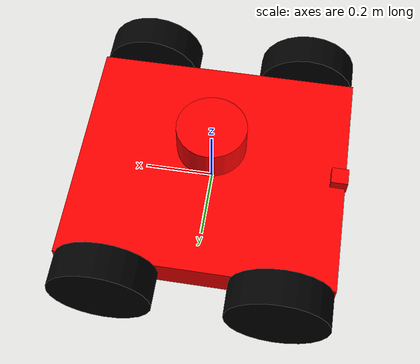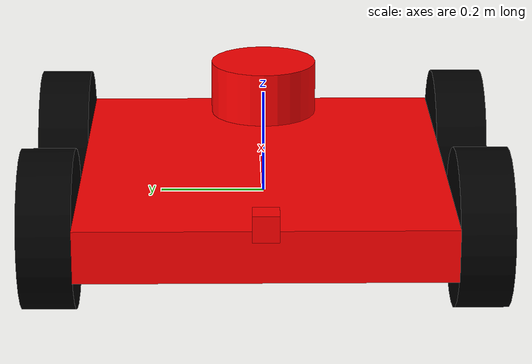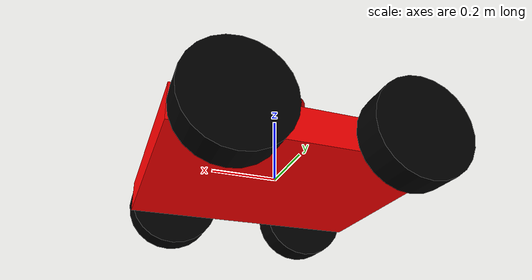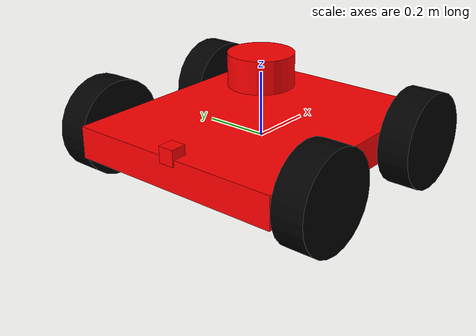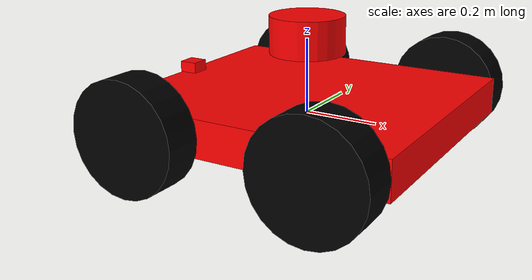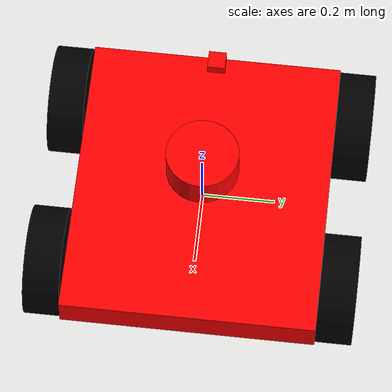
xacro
<?xml version="1.0"?>

<robot xmlns:xacro="http://wwww.ros.org/wiki/xacro" name="rover">

<link name="base_footprint"/>

<xacro:property name="constant" value="1/12"/>
<xacro:property name="mass" value="10.0"/>
<xacro:property name="width" value="0.7"/>
<xacro:property name="height" value="0.1"/>
<xacro:property name="length" value="0.8"/>

<xacro:property name="radius" value="0.15"/>

<xacro:property name="camera_link" value="0.05" /> <!-- Size of square 'camera' box -->
<xacro:property name="imu_link" value="0.05" /> <!-- Size of square 'imus' box -->
<link name="base_link">
    <inertial>
        <mass value="${mass}"/>
        <origin xyz="0.0 0.0 0.0" rpy="0.0 0.0 0.0"/>
        <inertia ixx="0.054" ixy="0.0"
        ixz="0.0" iyy="0.041"
        iyz="0.0" izz="0.09"/>
    </inertial>
    <visual name="">
        <origin xyz="0.0 0.0 0.0" rpy="0.0 0.0 0.0"/>
        <geometry>
            <box size="${length} ${width} ${height}" />
        </geometry>
        <material name="red">
                  <color rgba="1.0 0.0 0.0 1.0"/>
        </material>
    </visual>
    <collision>
        <geometry>
            <box size="${length} ${width} ${height}" />
        </geometry>
    </collision>
</link>

<joint name="base_joint" type="fixed">
    <parent link="base_footprint"/>
    <child link="base_link"/>
    <origin xyz="0 0 0.0135" rpy="0 0 0"/>
    <axis xyz="0 0 0"/>
</joint>

<!-- Rear right wheel-->

<link name="wheel_rear_right_link">
    <visual name="">
    <origin xyz="0.0 0.0 0.0" rpy="0.0 0.0 0.0"/>
        <geometry>
            <cylinder radius="${radius}" length="0.1"/>
        </geometry>
        <material name="black">
            <color rgba="0.0 0.0 0.0 1.0"/>
        </material>
    </visual>
    <collision>
        <origin xyz="0.0 0.0 0.0" rpy="0.0 0.0 0.0"/>
        <geometry>
            <cylinder radius="${radius}" length="0.1"/>
        </geometry>
    </collision>
    <inertial>
        <mass value="0.5"/>
        <origin xyz="0.0 0.0 0.0" rpy="0.0 0.0 0.0"/>
        <inertia ixx="0.0" ixy="0.0" ixz="0.0" iyy="0.0" iyz="0.0" izz="0.0"/>
    </inertial>
</link>

<joint name="wheel_rear_right_joint" type="continuous">
    <parent link="base_link"/>
    <child link="wheel_rear_right_link"/>
    <axis xyz="0 0 1"/>
    <origin xyz="0.25 0.40 0" rpy="1.57 0 0"/>
</joint>

<!-- Rear left wheel-->

<link name="wheel_rear_left_link">
    <visual name="">
    <origin xyz="0.0 0.0 0.0" rpy="0.0 0.0 0.0"/>
        <geometry>
            <cylinder radius="${radius}" length="0.1"/>
        </geometry>
        <material name="black">
            <color rgba="0.0 0.0 0.0 1.0"/>
        </material>
    </visual>
    <collision>
        <origin xyz="0.0 0.0 0.0" rpy="0.0 0.0 0.0"/>
        <geometry>
            <cylinder radius="${radius}" length="0.1"/>
        </geometry>
    </collision>
    <inertial>
        <mass value="0.5"/>
        <origin xyz="0.0 0.0 0.0" rpy="0.0 0.0 0.0"/>
        <inertia ixx="0.0" ixy="0.0" ixz="0.0" iyy="0.0" iyz="0.0" izz="0.0"/>
    </inertial>
</link>

<joint name="wheel_rear_left_joint" type="continuous">
    <parent link="base_link"/>
    <child link="wheel_rear_left_link"/>
    <axis xyz="0 0 1"/>
    <origin xyz="0.25 -0.40 0" rpy="1.57 0 0"/>
</joint>

<!-- Front right wheel-->

<link name="wheel_front_right_link">
    <visual name="">
    <origin xyz="0.0 0.0 0.0" rpy="0.0 0.0 0.0"/>
        <geometry>
            <cylinder radius="${radius}" length="0.1"/>
        </geometry>
        <material name="black">
            <color rgba="0.0 0.0 0.0 1.0"/>
        </material>
    </visual>
    <collision>
        <origin xyz="0.0 0.0 0.0" rpy="0.0 0.0 0.0"/>
        <geometry>
            <cylinder radius="${radius}" length="0.1"/>
        </geometry>
    </collision>
    <inertial>
        <mass value="0.5"/>
        <origin xyz="0.0 0.0 0.0" rpy="0.0 0.0 0.0"/>
        <inertia ixx="0.0" ixy="0.0" ixz="0.0" iyy="0.0" iyz="0.0" izz="0.0"/>
    </inertial>
</link>

<joint name="wheel_front_right_joint" type="continuous">
    <parent link="base_link"/>
    <child link="wheel_front_right_link"/>
    <axis xyz="0 0 1"/>
    <origin xyz="-0.25 0.40 0" rpy="1.57 0 0"/>
</joint>

<!-- Front left wheel-->

<link name="wheel_front_left_link">
    <visual name="">
    <origin xyz="0.0 0.0 0.0" rpy="0.0 0.0 0.0"/>
        <geometry>
            <cylinder radius="${radius}" length="0.1"/>
        </geometry>
        <material name="black">
            <color rgba="0.0 0.0 0.0 1.0"/>
        </material>
    </visual>
    <collision>
        <origin xyz="0.0 0.0 0.0" rpy="0.0 0.0 0.0"/>
        <geometry>
            <cylinder radius="${radius}" length="0.1"/>
        </geometry>
    </collision>
    <inertial>
        <mass value="0.5"/>
        <origin xyz="0.0 0.0 0.0" rpy="0.0 0.0 0.0"/>
        <inertia ixx="0.0" ixy="0.0" ixz="0.0" iyy="0.0" iyz="0.0" izz="0.0"/>
    </inertial>
</link>

<joint name="wheel_front_left_joint" type="continuous">
    <parent link="base_link"/>
    <child link="wheel_front_left_link"/>
    <axis xyz="0 0 1"/>
    <origin xyz="-0.25 -0.40 0" rpy="1.57 0 0"/>

</joint>

  <!-- Camera -->
<link name="camera_link">
    <collision>
      <origin xyz="0 0 0" rpy="0 0 0"/>
      <geometry>
    <box size="${camera_link} ${camera_link} ${camera_link}"/>
      </geometry>
    </collision>

    <visual>
      <origin xyz="0 0 0" rpy="0 0 0"/>
      <geometry>
    <box size="${camera_link} ${camera_link} ${camera_link}"/>
      </geometry>
      <material name="red"/>
    </visual>

    <inertial>
      <mass value="1e-5" />
      <origin xyz="0 0 0" rpy="0 0 0"/>
      <inertia ixx="1e-6" ixy="0" ixz="0" iyy="1e-6" iyz="0" izz="1e-6" />
    </inertial>
</link>
<joint name="camera_joint" type="fixed">
    <axis xyz="0 1 0" />
    <origin xyz="-0.38 0.0 0.055" rpy="0 0.0 3.14"/>
    <parent link="base_link"/>
    <child link="camera_link"/>
</joint>

  <!-- IMU -->
<link name="imu_link">
    <collision>
      <origin xyz="0 0 0" rpy="0 0 0"/>
      <geometry>
    <box size="${imu_link} ${imu_link} ${imu_link}"/>
      </geometry>
    </collision>

    <visual>
      <origin xyz="0 0 0" rpy="0 0 0"/>
      <geometry>
    <box size="${imu_link} ${imu_link} ${imu_link}"/>
      </geometry>
      <material name="red"/>
    </visual>

    <inertial>
      <mass value="1e-5" />
      <origin xyz="0 0 0" rpy="0 0 0"/>
      <inertia ixx="1e-6" ixy="0" ixz="0" iyy="1e-6" iyz="0" izz="1e-6" />
    </inertial>
</link>
<joint name="imu_joint" type="fixed">
    <axis xyz="0 0 0" />
    <origin xyz="0.0 0.0 0.0" rpy="0 0 1.57"/>
    <parent link="base_link"/>
    <child link="imu_link"/>
</joint>

<!--hokuyu link and joint-->
<link name="hokuyu_link">
    <collision>
      <origin xyz="0 0 0" rpy="0 0 0"/>
      <geometry>
      <cylinder length="0.3" radius="0.1"/>
      </geometry>
    </collision>

    <visual>
      <origin xyz="0 0 0" rpy="0 0 0"/>
      <geometry>
      <cylinder length="0.1" radius="0.1"/>
      </geometry>
      <material name="red"/>
    </visual>

    <inertial>
      <mass value="1e-5" />
      <origin xyz="0 0 0" rpy="0 0 0"/>
      <inertia ixx="1e-6" ixy="0" ixz="0" iyy="1e-6" iyz="0" izz="1e-6" />
    </inertial>
</link>
<joint name="hokuyu_joint" type="fixed">
    <axis xyz="0 1 0" />
    <origin xyz="0.0 0.0 0.2" rpy="0 0 0"/>
    <parent link="base_link"/>
    <child link="hokuyu_link"/>
</joint>

  <!-- camera -->
  <gazebo reference="camera_link">
    <sensor type="camera" name="camera1">
      <update_rate>30.0</update_rate>
      <camera name="head">
        <horizontal_fov>1.3962634</horizontal_fov>
        <image>
          <width>800</width>
          <height>800</height>
          <format>R8G8B8</format>
        </image>
        <clip>
          <near>0.02</near>
          <far>300</far>
        </clip>
        <noise>
          <type>gaussian</type>
          <!-- Noise is sampled independently per pixel on each frame.
               That pixel's noise value is added to each of its color
               channels, which at that point lie in the range [0,1]. -->
          <mean>0.0</mean>
          <stddev>0.007</stddev>
        </noise>
      </camera>
      <plugin name="camera_controller" filename="libgazebo_ros_camera.so">
        <alwaysOn>true</alwaysOn>
        <updateRate>30.0</updateRate>
        <cameraName>mobile_robot/camera1</cameraName>
        <imageTopicName>image_raw</imageTopicName>
        <cameraInfoTopicName>camera_info</cameraInfoTopicName>
        <frameName>camera_link</frameName>
        <hackBaseline>0.07</hackBaseline>
        <distortionK1>0.0</distortionK1>
        <distortionK2>0.0</distortionK2>
        <distortionK3>0.0</distortionK3>
        <distortionT1>0.0</distortionT1>
        <distortionT2>0.0</distortionT2>
      </plugin>
    </sensor>
  </gazebo>

<gazebo>
  <plugin name="skid_steer_drive_controller" filename="libgazebo_ros_skid_steer_drive.so">
    <updateRate>100.0</updateRate>
    <robotNamespace>/</robotNamespace>
    <leftFrontJoint>wheel_front_left_joint</leftFrontJoint>
    <rightFrontJoint>wheel_front_right_joint</rightFrontJoint>
    <leftRearJoint>wheel_rear_left_joint</leftRearJoint>
    <rightRearJoint>wheel_rear_right_joint</rightRearJoint>
    <wheelSeparation>0.7</wheelSeparation>
    <wheelDiameter>0.30</wheelDiameter>
    <robotBaseFrame>base_link</robotBaseFrame>
    <torque>5</torque>
    <topicName>/cmd_vel</topicName>
    <broadcastTF>false</broadcastTF>
  </plugin>
</gazebo>

<gazebo>
    <plugin name="imu_plugin" filename="libgazebo_ros_imu.so">
      <alwaysOn>true</alwaysOn>
      <bodyName>imu_link</bodyName>
      <topicName>imu</topicName>
      <serviceName>imu_service</serviceName>
      <gaussianNoise>0.0</gaussianNoise>
      <frameName>imu_link</frameName>
      <updateRate>50.0</updateRate>
    </plugin>
  </gazebo>

<!--Hokuyo lidar plugin-->

<gazebo reference="hokuyu_link">
    <sensor type="ray" name="head_hokuyo_sensor">
      <pose>0 0 0 0 0 0</pose>
      <visualize>true</visualize>
      <update_rate>40</update_rate>
      <ray>
        <scan>
          <horizontal>
            <samples>720</samples>
            <resolution>1</resolution>
            <min_angle>-3.14</min_angle>
            <max_angle>3.14</max_angle>
          </horizontal>
        </scan>
        <range>
          <min>0.20</min>
          <max>50.0</max>
          <resolution>0.01</resolution>
        </range>
        <noise>
          <type>gaussian</type>
          <mean>0.0</mean>
          <stddev>0.01</stddev>
        </noise>
      </ray>
      <plugin name="gazebo_ros_head_hokuyo_controller" filename="libgazebo_ros_laser.so">
        <topicName>laserscan</topicName>
        <frameName>hokuyu_link</frameName>
      </plugin>
    </sensor>
  </gazebo>

  <!--GPS-->

   <joint name="gps_joint" type="fixed">
    <parent link="base_link"/>
    <origin xyz="0 0 0" rpy="0 0 0"/>
    <child link="gps_link"/>
  </joint>

  <link name="gps_link">
    <collision>
      <origin xyz="0 0 0" rpy="0 0 0"/>
      <geometry>
        <box size="0.02 0.02 0.02"/>
      </geometry>
    </collision>

    <visual>
      <origin xyz="0 0 0.0" rpy="0 0 0"/>
      <geometry>
        <box size="0.02 0.02 0.02"/>
      </geometry>
    </visual>

    <inertial>
      <origin xyz="0 0 0" rpy="0 0 0"/>
      <mass value="1"/>
      <inertia
        ixx="1.0" ixy="0.0" ixz="0.0"
        iyy="1.0" iyz="0.0"
        izz="1.0"/>
    </inertial>
  </link>

<gazebo>
    <plugin name="gazebo_ros_gps" filename="libhector_gazebo_ros_gps.so">
      <updateRate>10.0</updateRate>
      <robotNamespace>/</robotNamespace>
      <bodyName>gps_link</bodyName>
      <frameId>gps_link</frameId>
      <topicName>gps/fix</topicName>
      <velocityTopicName>gps/fix_velocity</velocityTopicName>
      <referenceLatitude>40.0</referenceLatitude>
      <referenceLongitude>40.0</referenceLongitude>
      <referenceHeading>90</referenceHeading>
      <referenceAltitude>10</referenceAltitude>
      <offset>0 0 0</offset>
      <drift>0.00 0.00 0.00</drift>
      <gaussianNoise>0.0 0.0 0.0</gaussianNoise>
      <velocityDrift>0.00 0.00 0.00</velocityDrift>
      <velocityGaussianNoise>0.05 0.05 0.05</velocityGaussianNoise>
    </plugin>
  </gazebo>
</robot>
